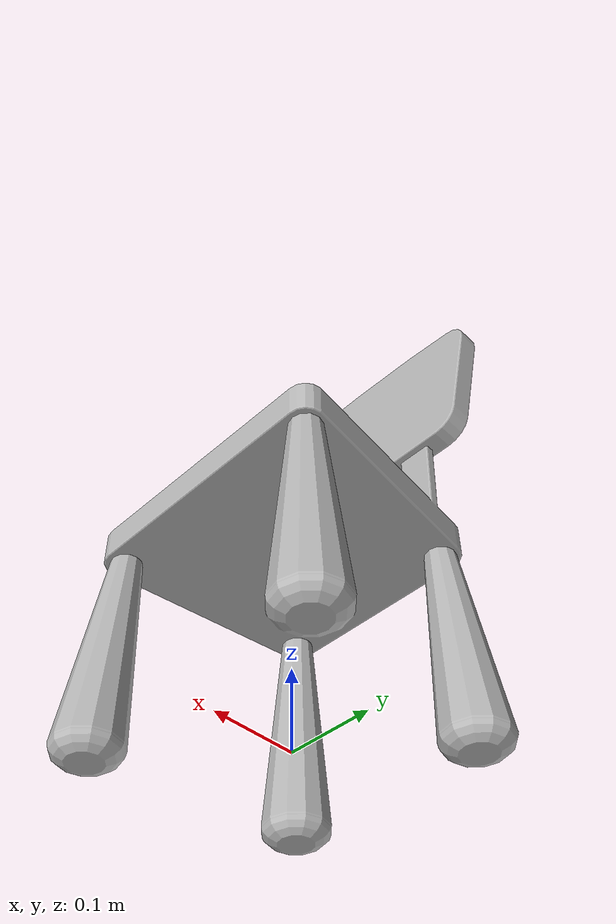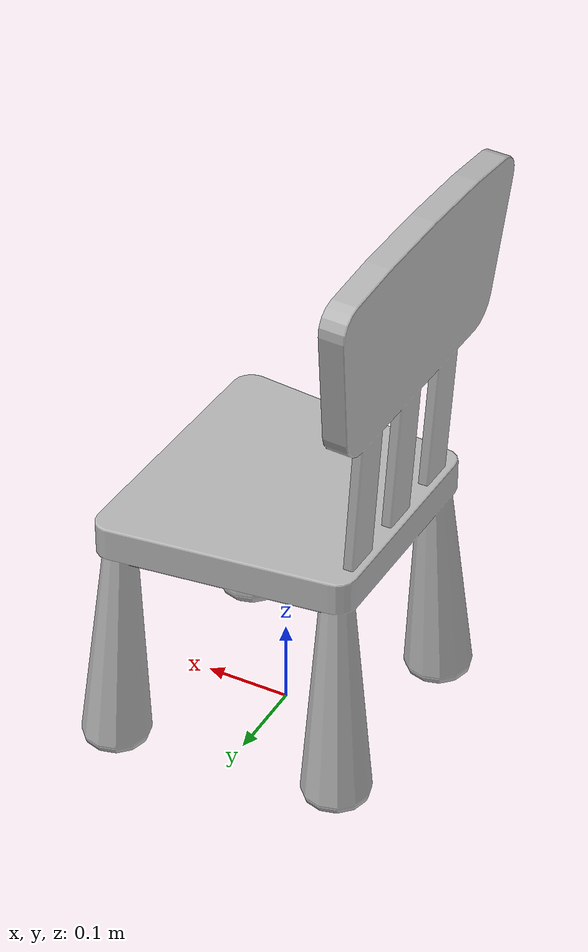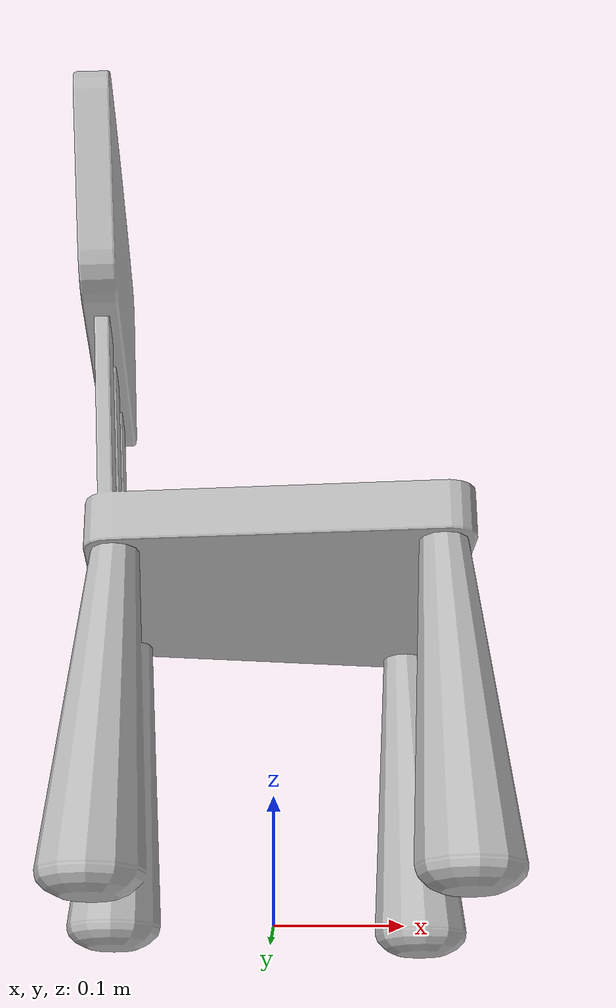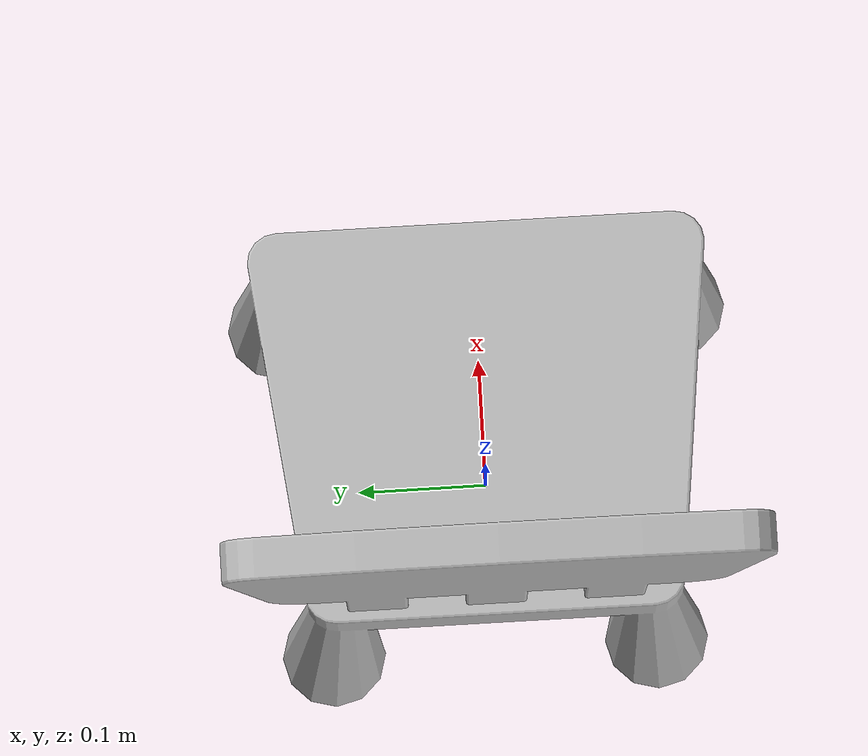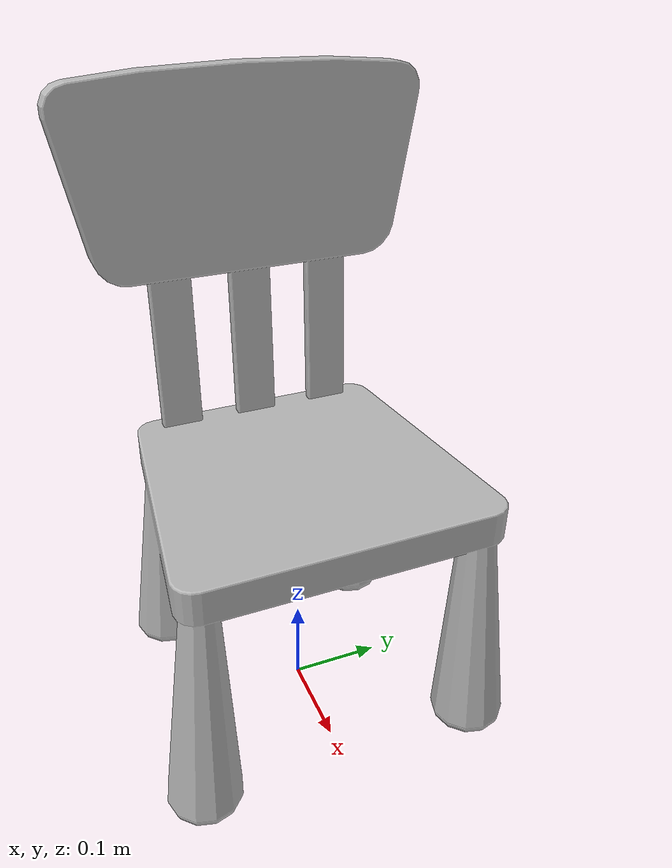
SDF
<?xml version='1.0'?>
<sdf version='1.4'>
  <model name='s__1017'>
    <pose>0 0 0 0 0 0</pose>
    <static>true</static>
    <link name='link'>
      <collision name='collision'>
        <pose>0 0 0 0 0 0</pose>
        <geometry>
          <box>
            <size>0.34 0.39 2</size>
          </box>
        </geometry>
      </collision>
      <visual name='visual'>
        <pose>0 0 0 0 0 0</pose>
        <geometry>
          <mesh><uri>model://s__1017/s__1017.dae</uri></mesh>
        </geometry>
      </visual>
    </link>
  </model>
</sdf>
